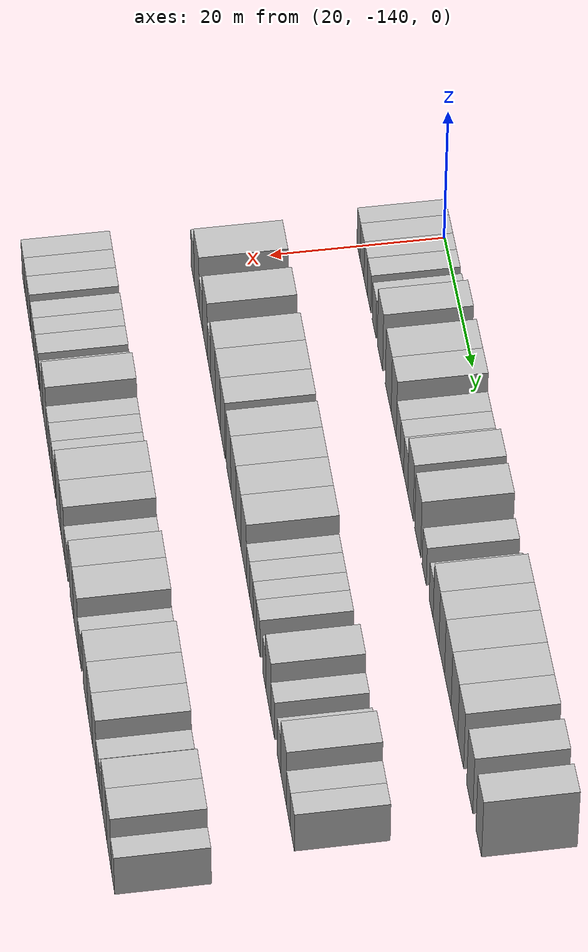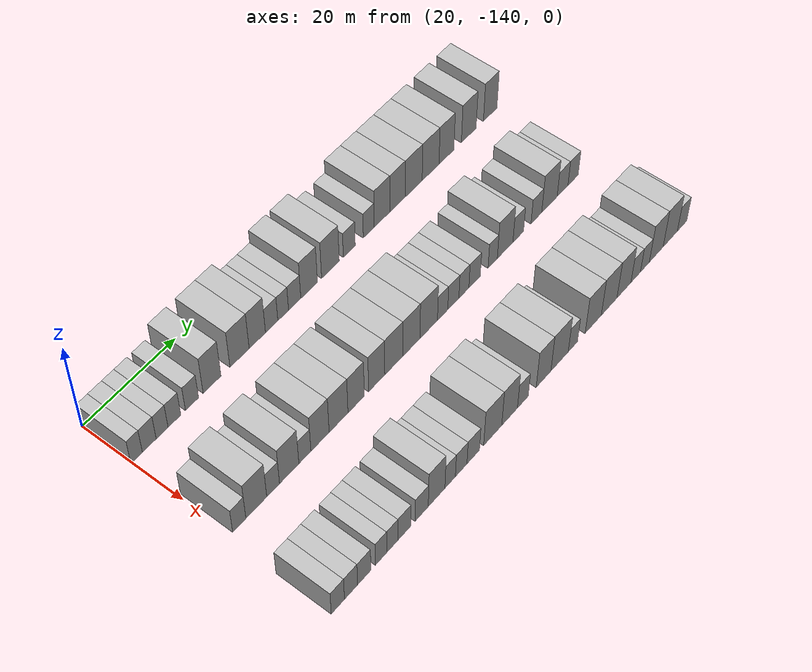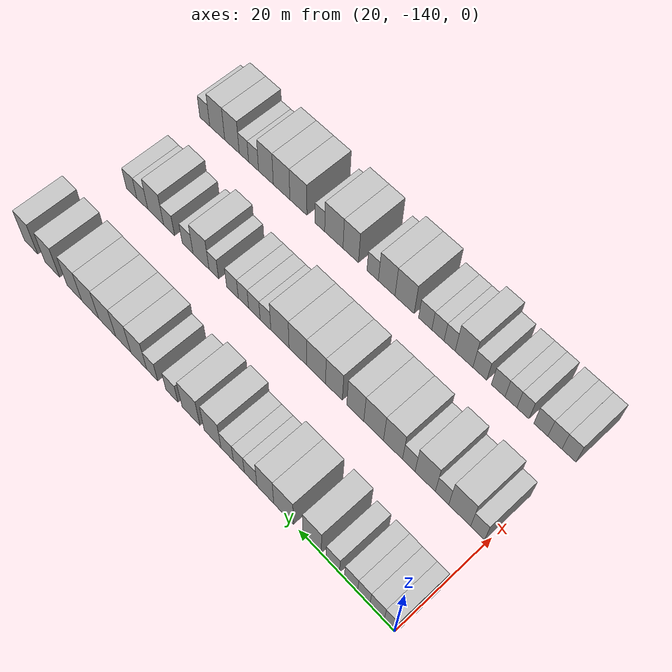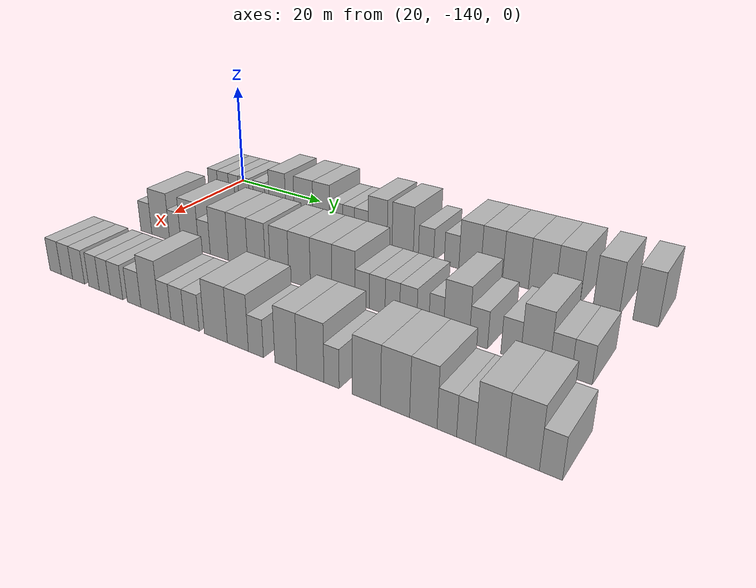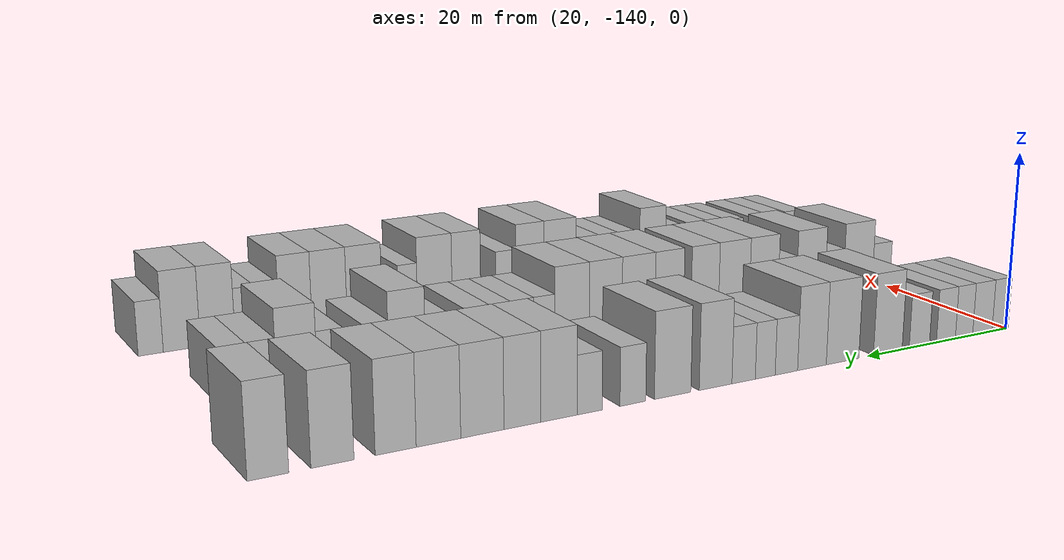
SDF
<sdf version="1.6">
 <world name="default">
  <model name="building_27">
   <static>1</static>
   <pose>25.0000 -139.0678 0 0.000000 0.000000 0.000000</pose>
   <link name="link">
    <pose>0 0 3.00 0 0 0</pose>
    <collision name="collision"><geometry><box><size>10.0000 2.4345 6.0000</size></box></geometry></collision>
    <visual name="visual">
     <cast_shadows>0</cast_shadows>
     <geometry><box><size>10.0000 2.4345 6.0000</size></box></geometry>
     <material>
      <script>
       <uri>model://HANNAS_wall/materials/scripts</uri>
       <uri>model://HANNAS_wall/materials/textures</uri>
       <name>vrc/HANNAS_wall</name>
      </script>
     </material>
    </visual>
   </link>
  </model>
  <model name="building_28">
   <static>1</static>
   <pose>25.0000 -136.3945 0 0.000000 0.000000 0.000000</pose>
   <link name="link">
    <pose>0 0 3.00 0 0 0</pose>
    <collision name="collision"><geometry><box><size>10.0000 2.9121 6.0000</size></box></geometry></collision>
    <visual name="visual">
     <cast_shadows>0</cast_shadows>
     <geometry><box><size>10.0000 2.9121 6.0000</size></box></geometry>
     <material>
      <script>
       <uri>model://HANNAS_wall/materials/scripts</uri>
       <uri>model://HANNAS_wall/materials/textures</uri>
       <name>vrc/HANNAS_wall</name>
      </script>
     </material>
    </visual>
   </link>
  </model>
  <model name="building_29">
   <static>1</static>
   <pose>25.0000 -133.6613 0 0.000000 0.000000 0.000000</pose>
   <link name="link">
    <pose>0 0 3.00 0 0 0</pose>
    <collision name="collision"><geometry><box><size>10.0000 2.5542 6.0000</size></box></geometry></collision>
    <visual name="visual">
     <cast_shadows>0</cast_shadows>
     <geometry><box><size>10.0000 2.5542 6.0000</size></box></geometry>
     <material>
      <script>
       <uri>model://HANNAS_wall/materials/scripts</uri>
       <uri>model://HANNAS_wall/materials/textures</uri>
       <name>vrc/HANNAS_wall</name>
      </script>
     </material>
    </visual>
   </link>
  </model>
  <model name="building_30">
   <static>1</static>
   <pose>25.0000 -131.0074 0 0.000000 0.000000 0.000000</pose>
   <link name="link">
    <pose>0 0 3.00 0 0 0</pose>
    <collision name="collision"><geometry><box><size>10.0000 2.7537 6.0000</size></box></geometry></collision>
    <visual name="visual">
     <cast_shadows>0</cast_shadows>
     <geometry><box><size>10.0000 2.7537 6.0000</size></box></geometry>
     <material>
      <script>
       <uri>model://HANNAS_wall/materials/scripts</uri>
       <uri>model://HANNAS_wall/materials/textures</uri>
       <name>vrc/HANNAS_wall</name>
      </script>
     </material>
    </visual>
   </link>
  </model>
  <model name="building_31">
   <static>1</static>
   <pose>25.0000 -127.1895 0 0.000000 0.000000 0.000000</pose>
   <link name="link">
    <pose>0 0 3.00 0 0 0</pose>
    <collision name="collision"><geometry><box><size>10.0000 2.8820 6.0000</size></box></geometry></collision>
    <visual name="visual">
     <cast_shadows>0</cast_shadows>
     <geometry><box><size>10.0000 2.8820 6.0000</size></box></geometry>
     <material>
      <script>
       <uri>model://HANNAS_wall/materials/scripts</uri>
       <uri>model://HANNAS_wall/materials/textures</uri>
       <name>vrc/HANNAS_wall</name>
      </script>
     </material>
    </visual>
   </link>
  </model>
  <model name="building_32">
   <static>1</static>
   <pose>25.0000 -122.7616 0 0.000000 0.000000 0.000000</pose>
   <link name="link">
    <pose>0 0 4.50 0 0 0</pose>
    <collision name="collision"><geometry><box><size>10.0000 3.9737 9.0000</size></box></geometry></collision>
    <visual name="visual">
     <cast_shadows>0</cast_shadows>
     <geometry><box><size>10.0000 3.9737 9.0000</size></box></geometry>
     <material>
      <script>
       <uri>model://HANNAS_wall/materials/scripts</uri>
       <uri>model://HANNAS_wall/materials/textures</uri>
       <name>vrc/HANNAS_wall</name>
      </script>
     </material>
    </visual>
   </link>
  </model>
  <model name="building_33">
   <static>1</static>
   <pose>25.0000 -116.5971 0 0.000000 0.000000 0.000000</pose>
   <link name="link">
    <pose>0 0 4.50 0 0 0</pose>
    <collision name="collision"><geometry><box><size>10.0000 4.3553 9.0000</size></box></geometry></collision>
    <visual name="visual">
     <cast_shadows>0</cast_shadows>
     <geometry><box><size>10.0000 4.3553 9.0000</size></box></geometry>
     <material>
      <script>
       <uri>model://HANNAS_wall/materials/scripts</uri>
       <uri>model://HANNAS_wall/materials/textures</uri>
       <name>vrc/HANNAS_wall</name>
      </script>
     </material>
    </visual>
   </link>
  </model>
  <model name="building_34">
   <static>1</static>
   <pose>25.0000 -112.5437 0 0.000000 0.000000 0.000000</pose>
   <link name="link">
    <pose>0 0 4.50 0 0 0</pose>
    <collision name="collision"><geometry><box><size>10.0000 3.7516 9.0000</size></box></geometry></collision>
    <visual name="visual">
     <cast_shadows>0</cast_shadows>
     <geometry><box><size>10.0000 3.7516 9.0000</size></box></geometry>
     <material>
      <script>
       <uri>model://HANNAS_wall/materials/scripts</uri>
       <uri>model://HANNAS_wall/materials/textures</uri>
       <name>vrc/HANNAS_wall</name>
      </script>
     </material>
    </visual>
   </link>
  </model>
  <model name="building_35">
   <static>1</static>
   <pose>25.0000 -109.2309 0 0.000000 0.000000 0.000000</pose>
   <link name="link">
    <pose>0 0 3.00 0 0 0</pose>
    <collision name="collision"><geometry><box><size>10.0000 2.8741 6.0000</size></box></geometry></collision>
    <visual name="visual">
     <cast_shadows>0</cast_shadows>
     <geometry><box><size>10.0000 2.8741 6.0000</size></box></geometry>
     <material>
      <script>
       <uri>model://HANNAS_wall/materials/scripts</uri>
       <uri>model://HANNAS_wall/materials/textures</uri>
       <name>vrc/HANNAS_wall</name>
      </script>
     </material>
    </visual>
   </link>
  </model>
  <model name="building_36">
   <static>1</static>
   <pose>25.0000 -106.5407 0 0.000000 0.000000 0.000000</pose>
   <link name="link">
    <pose>0 0 3.00 0 0 0</pose>
    <collision name="collision"><geometry><box><size>10.0000 2.5064 6.0000</size></box></geometry></collision>
    <visual name="visual">
     <cast_shadows>0</cast_shadows>
     <geometry><box><size>10.0000 2.5064 6.0000</size></box></geometry>
     <material>
      <script>
       <uri>model://HANNAS_wall/materials/scripts</uri>
       <uri>model://HANNAS_wall/materials/textures</uri>
       <name>vrc/HANNAS_wall</name>
      </script>
     </material>
    </visual>
   </link>
  </model>
  <model name="building_37">
   <static>1</static>
   <pose>25.0000 -103.8382 0 0.000000 0.000000 0.000000</pose>
   <link name="link">
    <pose>0 0 3.00 0 0 0</pose>
    <collision name="collision"><geometry><box><size>10.0000 2.8986 6.0000</size></box></geometry></collision>
    <visual name="visual">
     <cast_shadows>0</cast_shadows>
     <geometry><box><size>10.0000 2.8986 6.0000</size></box></geometry>
     <material>
      <script>
       <uri>model://HANNAS_wall/materials/scripts</uri>
       <uri>model://HANNAS_wall/materials/textures</uri>
       <name>vrc/HANNAS_wall</name>
      </script>
     </material>
    </visual>
   </link>
  </model>
  <model name="building_38">
   <static>1</static>
   <pose>25.0000 -100.4034 0 0.000000 0.000000 0.000000</pose>
   <link name="link">
    <pose>0 0 4.50 0 0 0</pose>
    <collision name="collision"><geometry><box><size>10.0000 3.9711 9.0000</size></box></geometry></collision>
    <visual name="visual">
     <cast_shadows>0</cast_shadows>
     <geometry><box><size>10.0000 3.9711 9.0000</size></box></geometry>
     <material>
      <script>
       <uri>model://HANNAS_wall/materials/scripts</uri>
       <uri>model://HANNAS_wall/materials/textures</uri>
       <name>vrc/HANNAS_wall</name>
      </script>
     </material>
    </visual>
   </link>
  </model>
  <model name="building_39">
   <static>1</static>
   <pose>25.0000 -95.2755 0 0.000000 0.000000 0.000000</pose>
   <link name="link">
    <pose>0 0 4.50 0 0 0</pose>
    <collision name="collision"><geometry><box><size>10.0000 4.2846 9.0000</size></box></geometry></collision>
    <visual name="visual">
     <cast_shadows>0</cast_shadows>
     <geometry><box><size>10.0000 4.2846 9.0000</size></box></geometry>
     <material>
      <script>
       <uri>model://HANNAS_wall/materials/scripts</uri>
       <uri>model://HANNAS_wall/materials/textures</uri>
       <name>vrc/HANNAS_wall</name>
      </script>
     </material>
    </visual>
   </link>
  </model>
  <model name="building_40">
   <static>1</static>
   <pose>25.0000 -90.6604 0 0.000000 0.000000 0.000000</pose>
   <link name="link">
    <pose>0 0 3.00 0 0 0</pose>
    <collision name="collision"><geometry><box><size>10.0000 2.9457 6.0000</size></box></geometry></collision>
    <visual name="visual">
     <cast_shadows>0</cast_shadows>
     <geometry><box><size>10.0000 2.9457 6.0000</size></box></geometry>
     <material>
      <script>
       <uri>model://HANNAS_wall/materials/scripts</uri>
       <uri>model://HANNAS_wall/materials/textures</uri>
       <name>vrc/HANNAS_wall</name>
      </script>
     </material>
    </visual>
   </link>
  </model>
  <model name="building_41">
   <static>1</static>
   <pose>25.0000 -85.8141 0 0.000000 0.000000 0.000000</pose>
   <link name="link">
    <pose>0 0 3.00 0 0 0</pose>
    <collision name="collision"><geometry><box><size>10.0000 2.7468 6.0000</size></box></geometry></collision>
    <visual name="visual">
     <cast_shadows>0</cast_shadows>
     <geometry><box><size>10.0000 2.7468 6.0000</size></box></geometry>
     <material>
      <script>
       <uri>model://HANNAS_wall/materials/scripts</uri>
       <uri>model://HANNAS_wall/materials/textures</uri>
       <name>vrc/HANNAS_wall</name>
      </script>
     </material>
    </visual>
   </link>
  </model>
  <model name="building_42">
   <static>1</static>
   <pose>25.0000 -82.4574 0 0.000000 0.000000 0.000000</pose>
   <link name="link">
    <pose>0 0 4.50 0 0 0</pose>
    <collision name="collision"><geometry><box><size>10.0000 3.9666 9.0000</size></box></geometry></collision>
    <visual name="visual">
     <cast_shadows>0</cast_shadows>
     <geometry><box><size>10.0000 3.9666 9.0000</size></box></geometry>
     <material>
      <script>
       <uri>model://HANNAS_wall/materials/scripts</uri>
       <uri>model://HANNAS_wall/materials/textures</uri>
       <name>vrc/HANNAS_wall</name>
      </script>
     </material>
    </visual>
   </link>
  </model>
  <model name="building_43">
   <static>1</static>
   <pose>25.0000 -78.5369 0 0.000000 0.000000 0.000000</pose>
   <link name="link">
    <pose>0 0 4.50 0 0 0</pose>
    <collision name="collision"><geometry><box><size>10.0000 3.8744 9.0000</size></box></geometry></collision>
    <visual name="visual">
     <cast_shadows>0</cast_shadows>
     <geometry><box><size>10.0000 3.8744 9.0000</size></box></geometry>
     <material>
      <script>
       <uri>model://HANNAS_wall/materials/scripts</uri>
       <uri>model://HANNAS_wall/materials/textures</uri>
       <name>vrc/HANNAS_wall</name>
      </script>
     </material>
    </visual>
   </link>
  </model>
  <model name="building_44">
   <static>1</static>
   <pose>25.0000 -74.3791 0 0.000000 0.000000 0.000000</pose>
   <link name="link">
    <pose>0 0 4.50 0 0 0</pose>
    <collision name="collision"><geometry><box><size>10.0000 4.4412 9.0000</size></box></geometry></collision>
    <visual name="visual">
     <cast_shadows>0</cast_shadows>
     <geometry><box><size>10.0000 4.4412 9.0000</size></box></geometry>
     <material>
      <script>
       <uri>model://HANNAS_wall/materials/scripts</uri>
       <uri>model://HANNAS_wall/materials/textures</uri>
       <name>vrc/HANNAS_wall</name>
      </script>
     </material>
    </visual>
   </link>
  </model>
  <model name="building_45">
   <static>1</static>
   <pose>25.0000 -69.9395 0 0.000000 0.000000 0.000000</pose>
   <link name="link">
    <pose>0 0 4.50 0 0 0</pose>
    <collision name="collision"><geometry><box><size>10.0000 4.4379 9.0000</size></box></geometry></collision>
    <visual name="visual">
     <cast_shadows>0</cast_shadows>
     <geometry><box><size>10.0000 4.4379 9.0000</size></box></geometry>
     <material>
      <script>
       <uri>model://HANNAS_wall/materials/scripts</uri>
       <uri>model://HANNAS_wall/materials/textures</uri>
       <name>vrc/HANNAS_wall</name>
      </script>
     </material>
    </visual>
   </link>
  </model>
  <model name="building_46">
   <static>1</static>
   <pose>25.0000 -65.7324 0 0.000000 0.000000 0.000000</pose>
   <link name="link">
    <pose>0 0 4.50 0 0 0</pose>
    <collision name="collision"><geometry><box><size>10.0000 3.9764 9.0000</size></box></geometry></collision>
    <visual name="visual">
     <cast_shadows>0</cast_shadows>
     <geometry><box><size>10.0000 3.9764 9.0000</size></box></geometry>
     <material>
      <script>
       <uri>model://HANNAS_wall/materials/scripts</uri>
       <uri>model://HANNAS_wall/materials/textures</uri>
       <name>vrc/HANNAS_wall</name>
      </script>
     </material>
    </visual>
   </link>
  </model>
  <model name="building_47">
   <static>1</static>
   <pose>25.0000 -59.7386 0 0.000000 0.000000 0.000000</pose>
   <link name="link">
    <pose>0 0 4.50 0 0 0</pose>
    <collision name="collision"><geometry><box><size>10.0000 4.0110 9.0000</size></box></geometry></collision>
    <visual name="visual">
     <cast_shadows>0</cast_shadows>
     <geometry><box><size>10.0000 4.0110 9.0000</size></box></geometry>
     <material>
      <script>
       <uri>model://HANNAS_wall/materials/scripts</uri>
       <uri>model://HANNAS_wall/materials/textures</uri>
       <name>vrc/HANNAS_wall</name>
      </script>
     </material>
    </visual>
   </link>
  </model>
  <model name="building_48">
   <static>1</static>
   <pose>25.0000 -53.8693 0 0.000000 0.000000 0.000000</pose>
   <link name="link">
    <pose>0 0 4.50 0 0 0</pose>
    <collision name="collision"><geometry><box><size>10.0000 3.7276 9.0000</size></box></geometry></collision>
    <visual name="visual">
     <cast_shadows>0</cast_shadows>
     <geometry><box><size>10.0000 3.7276 9.0000</size></box></geometry>
     <material>
      <script>
       <uri>model://HANNAS_wall/materials/scripts</uri>
       <uri>model://HANNAS_wall/materials/textures</uri>
       <name>vrc/HANNAS_wall</name>
      </script>
     </material>
    </visual>
   </link>
  </model>
  <model name="building_150">
   <static>1</static>
   <pose>44.0000 -138.0791 0 0.000000 0.000000 0.000000</pose>
   <link name="link">
    <pose>0 0 3.00 0 0 0</pose>
    <collision name="collision"><geometry><box><size>10.0000 2.8252 6.0000</size></box></geometry></collision>
    <visual name="visual">
     <cast_shadows>0</cast_shadows>
     <geometry><box><size>10.0000 2.8252 6.0000</size></box></geometry>
     <material>
      <script>
       <uri>model://HANNAS_wall/materials/scripts</uri>
       <uri>model://HANNAS_wall/materials/textures</uri>
       <name>vrc/HANNAS_wall</name>
      </script>
     </material>
    </visual>
   </link>
  </model>
  <model name="building_151">
   <static>1</static>
   <pose>44.0000 -134.4181 0 0.000000 0.000000 0.000000</pose>
   <link name="link">
    <pose>0 0 4.50 0 0 0</pose>
    <collision name="collision"><geometry><box><size>10.0000 4.4967 9.0000</size></box></geometry></collision>
    <visual name="visual">
     <cast_shadows>0</cast_shadows>
     <geometry><box><size>10.0000 4.4967 9.0000</size></box></geometry>
     <material>
      <script>
       <uri>model://HANNAS_wall/materials/scripts</uri>
       <uri>model://HANNAS_wall/materials/textures</uri>
       <name>vrc/HANNAS_wall</name>
      </script>
     </material>
    </visual>
   </link>
  </model>
  <model name="building_152">
   <static>1</static>
   <pose>44.0000 -130.7746 0 0.000000 0.000000 0.000000</pose>
   <link name="link">
    <pose>0 0 3.00 0 0 0</pose>
    <collision name="collision"><geometry><box><size>10.0000 2.7904 6.0000</size></box></geometry></collision>
    <visual name="visual">
     <cast_shadows>0</cast_shadows>
     <geometry><box><size>10.0000 2.7904 6.0000</size></box></geometry>
     <material>
      <script>
       <uri>model://HANNAS_wall/materials/scripts</uri>
       <uri>model://HANNAS_wall/materials/textures</uri>
       <name>vrc/HANNAS_wall</name>
      </script>
     </material>
    </visual>
   </link>
  </model>
  <model name="building_153">
   <static>1</static>
   <pose>44.0000 -127.2425 0 0.000000 0.000000 0.000000</pose>
   <link name="link">
    <pose>0 0 4.50 0 0 0</pose>
    <collision name="collision"><geometry><box><size>10.0000 4.2736 9.0000</size></box></geometry></collision>
    <visual name="visual">
     <cast_shadows>0</cast_shadows>
     <geometry><box><size>10.0000 4.2736 9.0000</size></box></geometry>
     <material>
      <script>
       <uri>model://HANNAS_wall/materials/scripts</uri>
       <uri>model://HANNAS_wall/materials/textures</uri>
       <name>vrc/HANNAS_wall</name>
      </script>
     </material>
    </visual>
   </link>
  </model>
  <model name="building_154">
   <static>1</static>
   <pose>44.0000 -123.7593 0 0.000000 0.000000 0.000000</pose>
   <link name="link">
    <pose>0 0 3.00 0 0 0</pose>
    <collision name="collision"><geometry><box><size>10.0000 2.6928 6.0000</size></box></geometry></collision>
    <visual name="visual">
     <cast_shadows>0</cast_shadows>
     <geometry><box><size>10.0000 2.6928 6.0000</size></box></geometry>
     <material>
      <script>
       <uri>model://HANNAS_wall/materials/scripts</uri>
       <uri>model://HANNAS_wall/materials/textures</uri>
       <name>vrc/HANNAS_wall</name>
      </script>
     </material>
    </visual>
   </link>
  </model>
  <model name="building_155">
   <static>1</static>
   <pose>44.0000 -120.3516 0 0.000000 0.000000 0.000000</pose>
   <link name="link">
    <pose>0 0 4.50 0 0 0</pose>
    <collision name="collision"><geometry><box><size>10.0000 4.1226 9.0000</size></box></geometry></collision>
    <visual name="visual">
     <cast_shadows>0</cast_shadows>
     <geometry><box><size>10.0000 4.1226 9.0000</size></box></geometry>
     <material>
      <script>
       <uri>model://HANNAS_wall/materials/scripts</uri>
       <uri>model://HANNAS_wall/materials/textures</uri>
       <name>vrc/HANNAS_wall</name>
      </script>
     </material>
    </visual>
   </link>
  </model>
  <model name="building_156">
   <static>1</static>
   <pose>44.0000 -116.1264 0 0.000000 0.000000 0.000000</pose>
   <link name="link">
    <pose>0 0 4.50 0 0 0</pose>
    <collision name="collision"><geometry><box><size>10.0000 4.3278 9.0000</size></box></geometry></collision>
    <visual name="visual">
     <cast_shadows>0</cast_shadows>
     <geometry><box><size>10.0000 4.3278 9.0000</size></box></geometry>
     <material>
      <script>
       <uri>model://HANNAS_wall/materials/scripts</uri>
       <uri>model://HANNAS_wall/materials/textures</uri>
       <name>vrc/HANNAS_wall</name>
      </script>
     </material>
    </visual>
   </link>
  </model>
  <model name="building_157">
   <static>1</static>
   <pose>44.0000 -112.0617 0 0.000000 0.000000 0.000000</pose>
   <link name="link">
    <pose>0 0 4.50 0 0 0</pose>
    <collision name="collision"><geometry><box><size>10.0000 3.8017 9.0000</size></box></geometry></collision>
    <visual name="visual">
     <cast_shadows>0</cast_shadows>
     <geometry><box><size>10.0000 3.8017 9.0000</size></box></geometry>
     <material>
      <script>
       <uri>model://HANNAS_wall/materials/scripts</uri>
       <uri>model://HANNAS_wall/materials/textures</uri>
       <name>vrc/HANNAS_wall</name>
      </script>
     </material>
    </visual>
   </link>
  </model>
  <model name="building_158">
   <static>1</static>
   <pose>44.0000 -107.2463 0 0.000000 0.000000 0.000000</pose>
   <link name="link">
    <pose>0 0 4.50 0 0 0</pose>
    <collision name="collision"><geometry><box><size>10.0000 3.8291 9.0000</size></box></geometry></collision>
    <visual name="visual">
     <cast_shadows>0</cast_shadows>
     <geometry><box><size>10.0000 3.8291 9.0000</size></box></geometry>
     <material>
      <script>
       <uri>model://HANNAS_wall/materials/scripts</uri>
       <uri>model://HANNAS_wall/materials/textures</uri>
       <name>vrc/HANNAS_wall</name>
      </script>
     </material>
    </visual>
   </link>
  </model>
  <model name="building_159">
   <static>1</static>
   <pose>44.0000 -103.1674 0 0.000000 0.000000 0.000000</pose>
   <link name="link">
    <pose>0 0 4.50 0 0 0</pose>
    <collision name="collision"><geometry><box><size>10.0000 4.3288 9.0000</size></box></geometry></collision>
    <visual name="visual">
     <cast_shadows>0</cast_shadows>
     <geometry><box><size>10.0000 4.3288 9.0000</size></box></geometry>
     <material>
      <script>
       <uri>model://HANNAS_wall/materials/scripts</uri>
       <uri>model://HANNAS_wall/materials/textures</uri>
       <name>vrc/HANNAS_wall</name>
      </script>
     </material>
    </visual>
   </link>
  </model>
  <model name="building_160">
   <static>1</static>
   <pose>44.0000 -98.9202 0 0.000000 0.000000 0.000000</pose>
   <link name="link">
    <pose>0 0 4.50 0 0 0</pose>
    <collision name="collision"><geometry><box><size>10.0000 4.1656 9.0000</size></box></geometry></collision>
    <visual name="visual">
     <cast_shadows>0</cast_shadows>
     <geometry><box><size>10.0000 4.1656 9.0000</size></box></geometry>
     <material>
      <script>
       <uri>model://HANNAS_wall/materials/scripts</uri>
       <uri>model://HANNAS_wall/materials/textures</uri>
       <name>vrc/HANNAS_wall</name>
      </script>
     </material>
    </visual>
   </link>
  </model>
  <model name="building_161">
   <static>1</static>
   <pose>44.0000 -94.6711 0 0.000000 0.000000 0.000000</pose>
   <link name="link">
    <pose>0 0 4.50 0 0 0</pose>
    <collision name="collision"><geometry><box><size>10.0000 4.3327 9.0000</size></box></geometry></collision>
    <visual name="visual">
     <cast_shadows>0</cast_shadows>
     <geometry><box><size>10.0000 4.3327 9.0000</size></box></geometry>
     <material>
      <script>
       <uri>model://HANNAS_wall/materials/scripts</uri>
       <uri>model://HANNAS_wall/materials/textures</uri>
       <name>vrc/HANNAS_wall</name>
      </script>
     </material>
    </visual>
   </link>
  </model>
  <model name="building_162">
   <static>1</static>
   <pose>44.0000 -91.2147 0 0.000000 0.000000 0.000000</pose>
   <link name="link">
    <pose>0 0 3.00 0 0 0</pose>
    <collision name="collision"><geometry><box><size>10.0000 2.5800 6.0000</size></box></geometry></collision>
    <visual name="visual">
     <cast_shadows>0</cast_shadows>
     <geometry><box><size>10.0000 2.5800 6.0000</size></box></geometry>
     <material>
      <script>
       <uri>model://HANNAS_wall/materials/scripts</uri>
       <uri>model://HANNAS_wall/materials/textures</uri>
       <name>vrc/HANNAS_wall</name>
      </script>
     </material>
    </visual>
   </link>
  </model>
  <model name="building_163">
   <static>1</static>
   <pose>44.0000 -88.5266 0 0.000000 0.000000 0.000000</pose>
   <link name="link">
    <pose>0 0 3.00 0 0 0</pose>
    <collision name="collision"><geometry><box><size>10.0000 2.7961 6.0000</size></box></geometry></collision>
    <visual name="visual">
     <cast_shadows>0</cast_shadows>
     <geometry><box><size>10.0000 2.7961 6.0000</size></box></geometry>
     <material>
      <script>
       <uri>model://HANNAS_wall/materials/scripts</uri>
       <uri>model://HANNAS_wall/materials/textures</uri>
       <name>vrc/HANNAS_wall</name>
      </script>
     </material>
    </visual>
   </link>
  </model>
  <model name="building_164">
   <static>1</static>
   <pose>44.0000 -85.8614 0 0.000000 0.000000 0.000000</pose>
   <link name="link">
    <pose>0 0 3.00 0 0 0</pose>
    <collision name="collision"><geometry><box><size>10.0000 2.5344 6.0000</size></box></geometry></collision>
    <visual name="visual">
     <cast_shadows>0</cast_shadows>
     <geometry><box><size>10.0000 2.5344 6.0000</size></box></geometry>
     <material>
      <script>
       <uri>model://HANNAS_wall/materials/scripts</uri>
       <uri>model://HANNAS_wall/materials/textures</uri>
       <name>vrc/HANNAS_wall</name>
      </script>
     </material>
    </visual>
   </link>
  </model>
  <model name="building_165">
   <static>1</static>
   <pose>44.0000 -83.1303 0 0.000000 0.000000 0.000000</pose>
   <link name="link">
    <pose>0 0 3.00 0 0 0</pose>
    <collision name="collision"><geometry><box><size>10.0000 2.9280 6.0000</size></box></geometry></collision>
    <visual name="visual">
     <cast_shadows>0</cast_shadows>
     <geometry><box><size>10.0000 2.9280 6.0000</size></box></geometry>
     <material>
      <script>
       <uri>model://HANNAS_wall/materials/scripts</uri>
       <uri>model://HANNAS_wall/materials/textures</uri>
       <name>vrc/HANNAS_wall</name>
      </script>
     </material>
    </visual>
   </link>
  </model>
  <model name="building_166">
   <static>1</static>
   <pose>44.0000 -78.4611 0 0.000000 0.000000 0.000000</pose>
   <link name="link">
    <pose>0 0 3.00 0 0 0</pose>
    <collision name="collision"><geometry><box><size>10.0000 2.4103 6.0000</size></box></geometry></collision>
    <visual name="visual">
     <cast_shadows>0</cast_shadows>
     <geometry><box><size>10.0000 2.4103 6.0000</size></box></geometry>
     <material>
      <script>
       <uri>model://HANNAS_wall/materials/scripts</uri>
       <uri>model://HANNAS_wall/materials/textures</uri>
       <name>vrc/HANNAS_wall</name>
      </script>
     </material>
    </visual>
   </link>
  </model>
  <model name="building_167">
   <static>1</static>
   <pose>44.0000 -75.2057 0 0.000000 0.000000 0.000000</pose>
   <link name="link">
    <pose>0 0 4.50 0 0 0</pose>
    <collision name="collision"><geometry><box><size>10.0000 4.1004 9.0000</size></box></geometry></collision>
    <visual name="visual">
     <cast_shadows>0</cast_shadows>
     <geometry><box><size>10.0000 4.1004 9.0000</size></box></geometry>
     <material>
      <script>
       <uri>model://HANNAS_wall/materials/scripts</uri>
       <uri>model://HANNAS_wall/materials/textures</uri>
       <name>vrc/HANNAS_wall</name>
      </script>
     </material>
    </visual>
   </link>
  </model>
  <model name="building_168">
   <static>1</static>
   <pose>44.0000 -71.7477 0 0.000000 0.000000 0.000000</pose>
   <link name="link">
    <pose>0 0 3.00 0 0 0</pose>
    <collision name="collision"><geometry><box><size>10.0000 2.8157 6.0000</size></box></geometry></collision>
    <visual name="visual">
     <cast_shadows>0</cast_shadows>
     <geometry><box><size>10.0000 2.8157 6.0000</size></box></geometry>
     <material>
      <script>
       <uri>model://HANNAS_wall/materials/scripts</uri>
       <uri>model://HANNAS_wall/materials/textures</uri>
       <name>vrc/HANNAS_wall</name>
      </script>
     </material>
    </visual>
   </link>
  </model>
  <model name="building_169">
   <static>1</static>
   <pose>44.0000 -66.8935 0 0.000000 0.000000 0.000000</pose>
   <link name="link">
    <pose>0 0 3.00 0 0 0</pose>
    <collision name="collision"><geometry><box><size>10.0000 2.8925 6.0000</size></box></geometry></collision>
    <visual name="visual">
     <cast_shadows>0</cast_shadows>
     <geometry><box><size>10.0000 2.8925 6.0000</size></box></geometry>
     <material>
      <script>
       <uri>model://HANNAS_wall/materials/scripts</uri>
       <uri>model://HANNAS_wall/materials/textures</uri>
       <name>vrc/HANNAS_wall</name>
      </script>
     </material>
    </visual>
   </link>
  </model>
  <model name="building_170">
   <static>1</static>
   <pose>44.0000 -63.3457 0 0.000000 0.000000 0.000000</pose>
   <link name="link">
    <pose>0 0 4.50 0 0 0</pose>
    <collision name="collision"><geometry><box><size>10.0000 4.2031 9.0000</size></box></geometry></collision>
    <visual name="visual">
     <cast_shadows>0</cast_shadows>
     <geometry><box><size>10.0000 4.2031 9.0000</size></box></geometry>
     <material>
      <script>
       <uri>model://HANNAS_wall/materials/scripts</uri>
       <uri>model://HANNAS_wall/materials/textures</uri>
       <name>vrc/HANNAS_wall</name>
      </script>
     </material>
    </visual>
   </link>
  </model>
  <model name="building_171">
   <static>1</static>
   <pose>44.0000 -59.7529 0 0.000000 0.000000 0.000000</pose>
   <link name="link">
    <pose>0 0 3.00 0 0 0</pose>
    <collision name="collision"><geometry><box><size>10.0000 2.9825 6.0000</size></box></geometry></collision>
    <visual name="visual">
     <cast_shadows>0</cast_shadows>
     <geometry><box><size>10.0000 2.9825 6.0000</size></box></geometry>
     <material>
      <script>
       <uri>model://HANNAS_wall/materials/scripts</uri>
       <uri>model://HANNAS_wall/materials/textures</uri>
       <name>vrc/HANNAS_wall</name>
      </script>
     </material>
    </visual>
   </link>
  </model>
  <model name="building_172">
   <static>1</static>
   <pose>44.0000 -56.8411 0 0.000000 0.000000 0.000000</pose>
   <link name="link">
    <pose>0 0 3.00 0 0 0</pose>
    <collision name="collision"><geometry><box><size>10.0000 2.8412 6.0000</size></box></geometry></collision>
    <visual name="visual">
     <cast_shadows>0</cast_shadows>
     <geometry><box><size>10.0000 2.8412 6.0000</size></box></geometry>
     <material>
      <script>
       <uri>model://HANNAS_wall/materials/scripts</uri>
       <uri>model://HANNAS_wall/materials/textures</uri>
       <name>vrc/HANNAS_wall</name>
      </script>
     </material>
    </visual>
   </link>
  </model>
  <model name="building_263">
   <static>1</static>
   <pose>63.0000 -139.1213 0 0.000000 0.000000 0.000000</pose>
   <link name="link">
    <pose>0 0 3.00 0 0 0</pose>
    <collision name="collision"><geometry><box><size>10.0000 2.8452 6.0000</size></box></geometry></collision>
    <visual name="visual">
     <cast_shadows>0</cast_shadows>
     <geometry><box><size>10.0000 2.8452 6.0000</size></box></geometry>
     <material>
      <script>
       <uri>model://HANNAS_wall/materials/scripts</uri>
       <uri>model://HANNAS_wall/materials/textures</uri>
       <name>vrc/HANNAS_wall</name>
      </script>
     </material>
    </visual>
   </link>
  </model>
  <model name="building_264">
   <static>1</static>
   <pose>63.0000 -136.2713 0 0.000000 0.000000 0.000000</pose>
   <link name="link">
    <pose>0 0 3.00 0 0 0</pose>
    <collision name="collision"><geometry><box><size>10.0000 2.8547 6.0000</size></box></geometry></collision>
    <visual name="visual">
     <cast_shadows>0</cast_shadows>
     <geometry><box><size>10.0000 2.8547 6.0000</size></box></geometry>
     <material>
      <script>
       <uri>model://HANNAS_wall/materials/scripts</uri>
       <uri>model://HANNAS_wall/materials/textures</uri>
       <name>vrc/HANNAS_wall</name>
      </script>
     </material>
    </visual>
   </link>
  </model>
  <model name="building_265">
   <static>1</static>
   <pose>63.0000 -133.3930 0 0.000000 0.000000 0.000000</pose>
   <link name="link">
    <pose>0 0 3.00 0 0 0</pose>
    <collision name="collision"><geometry><box><size>10.0000 2.9019 6.0000</size></box></geometry></collision>
    <visual name="visual">
     <cast_shadows>0</cast_shadows>
     <geometry><box><size>10.0000 2.9019 6.0000</size></box></geometry>
     <material>
      <script>
       <uri>model://HANNAS_wall/materials/scripts</uri>
       <uri>model://HANNAS_wall/materials/textures</uri>
       <name>vrc/HANNAS_wall</name>
      </script>
     </material>
    </visual>
   </link>
  </model>
  <model name="building_266">
   <static>1</static>
   <pose>63.0000 -129.6825 0 0.000000 0.000000 0.000000</pose>
   <link name="link">
    <pose>0 0 3.00 0 0 0</pose>
    <collision name="collision"><geometry><box><size>10.0000 2.5192 6.0000</size></box></geometry></collision>
    <visual name="visual">
     <cast_shadows>0</cast_shadows>
     <geometry><box><size>10.0000 2.5192 6.0000</size></box></geometry>
     <material>
      <script>
       <uri>model://HANNAS_wall/materials/scripts</uri>
       <uri>model://HANNAS_wall/materials/textures</uri>
       <name>vrc/HANNAS_wall</name>
      </script>
     </material>
    </visual>
   </link>
  </model>
  <model name="building_267">
   <static>1</static>
   <pose>63.0000 -127.1682 0 0.000000 0.000000 0.000000</pose>
   <link name="link">
    <pose>0 0 3.00 0 0 0</pose>
    <collision name="collision"><geometry><box><size>10.0000 2.5094 6.0000</size></box></geometry></collision>
    <visual name="visual">
     <cast_shadows>0</cast_shadows>
     <geometry><box><size>10.0000 2.5094 6.0000</size></box></geometry>
     <material>
      <script>
       <uri>model://HANNAS_wall/materials/scripts</uri>
       <uri>model://HANNAS_wall/materials/textures</uri>
       <name>vrc/HANNAS_wall</name>
      </script>
     </material>
    </visual>
   </link>
  </model>
  <model name="building_268">
   <static>1</static>
   <pose>63.0000 -124.4638 0 0.000000 0.000000 0.000000</pose>
   <link name="link">
    <pose>0 0 3.00 0 0 0</pose>
    <collision name="collision"><geometry><box><size>10.0000 2.8994 6.0000</size></box></geometry></collision>
    <visual name="visual">
     <cast_shadows>0</cast_shadows>
     <geometry><box><size>10.0000 2.8994 6.0000</size></box></geometry>
     <material>
      <script>
       <uri>model://HANNAS_wall/materials/scripts</uri>
       <uri>model://HANNAS_wall/materials/textures</uri>
       <name>vrc/HANNAS_wall</name>
      </script>
     </material>
    </visual>
   </link>
  </model>
  <model name="building_269">
   <static>1</static>
   <pose>63.0000 -120.5149 0 0.000000 0.000000 0.000000</pose>
   <link name="link">
    <pose>0 0 3.00 0 0 0</pose>
    <collision name="collision"><geometry><box><size>10.0000 2.9983 6.0000</size></box></geometry></collision>
    <visual name="visual">
     <cast_shadows>0</cast_shadows>
     <geometry><box><size>10.0000 2.9983 6.0000</size></box></geometry>
     <material>
      <script>
       <uri>model://HANNAS_wall/materials/scripts</uri>
       <uri>model://HANNAS_wall/materials/textures</uri>
       <name>vrc/HANNAS_wall</name>
      </script>
     </material>
    </visual>
   </link>
  </model>
  <model name="building_270">
   <static>1</static>
   <pose>63.0000 -117.0803 0 0.000000 0.000000 0.000000</pose>
   <link name="link">
    <pose>0 0 4.50 0 0 0</pose>
    <collision name="collision"><geometry><box><size>10.0000 3.8708 9.0000</size></box></geometry></collision>
    <visual name="visual">
     <cast_shadows>0</cast_shadows>
     <geometry><box><size>10.0000 3.8708 9.0000</size></box></geometry>
     <material>
      <script>
       <uri>model://HANNAS_wall/materials/scripts</uri>
       <uri>model://HANNAS_wall/materials/textures</uri>
       <name>vrc/HANNAS_wall</name>
      </script>
     </material>
    </visual>
   </link>
  </model>
  <model name="building_271">
   <static>1</static>
   <pose>63.0000 -113.9139 0 0.000000 0.000000 0.000000</pose>
   <link name="link">
    <pose>0 0 3.00 0 0 0</pose>
    <collision name="collision"><geometry><box><size>10.0000 2.4621 6.0000</size></box></geometry></collision>
    <visual name="visual">
     <cast_shadows>0</cast_shadows>
     <geometry><box><size>10.0000 2.4621 6.0000</size></box></geometry>
     <material>
      <script>
       <uri>model://HANNAS_wall/materials/scripts</uri>
       <uri>model://HANNAS_wall/materials/textures</uri>
       <name>vrc/HANNAS_wall</name>
      </script>
     </material>
    </visual>
   </link>
  </model>
  <model name="building_272">
   <static>1</static>
   <pose>63.0000 -111.3132 0 0.000000 0.000000 0.000000</pose>
   <link name="link">
    <pose>0 0 3.00 0 0 0</pose>
    <collision name="collision"><geometry><box><size>10.0000 2.7393 6.0000</size></box></geometry></collision>
    <visual name="visual">
     <cast_shadows>0</cast_shadows>
     <geometry><box><size>10.0000 2.7393 6.0000</size></box></geometry>
     <material>
      <script>
       <uri>model://HANNAS_wall/materials/scripts</uri>
       <uri>model://HANNAS_wall/materials/textures</uri>
       <name>vrc/HANNAS_wall</name>
      </script>
     </material>
    </visual>
   </link>
  </model>
  <model name="building_273">
   <static>1</static>
   <pose>63.0000 -108.4461 0 0.000000 0.000000 0.000000</pose>
   <link name="link">
    <pose>0 0 3.00 0 0 0</pose>
    <collision name="collision"><geometry><box><size>10.0000 2.9948 6.0000</size></box></geometry></collision>
    <visual name="visual">
     <cast_shadows>0</cast_shadows>
     <geometry><box><size>10.0000 2.9948 6.0000</size></box></geometry>
     <material>
      <script>
       <uri>model://HANNAS_wall/materials/scripts</uri>
       <uri>model://HANNAS_wall/materials/textures</uri>
       <name>vrc/HANNAS_wall</name>
      </script>
     </material>
    </visual>
   </link>
  </model>
  <model name="building_274">
   <static>1</static>
   <pose>63.0000 -103.7439 0 0.000000 0.000000 0.000000</pose>
   <link name="link">
    <pose>0 0 4.50 0 0 0</pose>
    <collision name="collision"><geometry><box><size>10.0000 4.4096 9.0000</size></box></geometry></collision>
    <visual name="visual">
     <cast_shadows>0</cast_shadows>
     <geometry><box><size>10.0000 4.4096 9.0000</size></box></geometry>
     <material>
      <script>
       <uri>model://HANNAS_wall/materials/scripts</uri>
       <uri>model://HANNAS_wall/materials/textures</uri>
       <name>vrc/HANNAS_wall</name>
      </script>
     </material>
    </visual>
   </link>
  </model>
  <model name="building_275">
   <static>1</static>
   <pose>63.0000 -99.6037 0 0.000000 0.000000 0.000000</pose>
   <link name="link">
    <pose>0 0 4.50 0 0 0</pose>
    <collision name="collision"><geometry><box><size>10.0000 3.8708 9.0000</size></box></geometry></collision>
    <visual name="visual">
     <cast_shadows>0</cast_shadows>
     <geometry><box><size>10.0000 3.8708 9.0000</size></box></geometry>
     <material>
      <script>
       <uri>model://HANNAS_wall/materials/scripts</uri>
       <uri>model://HANNAS_wall/materials/textures</uri>
       <name>vrc/HANNAS_wall</name>
      </script>
     </material>
    </visual>
   </link>
  </model>
  <model name="building_276">
   <static>1</static>
   <pose>63.0000 -96.3226 0 0.000000 0.000000 0.000000</pose>
   <link name="link">
    <pose>0 0 3.00 0 0 0</pose>
    <collision name="collision"><geometry><box><size>10.0000 2.6915 6.0000</size></box></geometry></collision>
    <visual name="visual">
     <cast_shadows>0</cast_shadows>
     <geometry><box><size>10.0000 2.6915 6.0000</size></box></geometry>
     <material>
      <script>
       <uri>model://HANNAS_wall/materials/scripts</uri>
       <uri>model://HANNAS_wall/materials/textures</uri>
       <name>vrc/HANNAS_wall</name>
      </script>
     </material>
    </visual>
   </link>
  </model>
  <model name="building_277">
   <static>1</static>
   <pose>63.0000 -91.1062 0 0.000000 0.000000 0.000000</pose>
   <link name="link">
    <pose>0 0 4.50 0 0 0</pose>
    <collision name="collision"><geometry><box><size>10.0000 3.7413 9.0000</size></box></geometry></collision>
    <visual name="visual">
     <cast_shadows>0</cast_shadows>
     <geometry><box><size>10.0000 3.7413 9.0000</size></box></geometry>
     <material>
      <script>
       <uri>model://HANNAS_wall/materials/scripts</uri>
       <uri>model://HANNAS_wall/materials/textures</uri>
       <name>vrc/HANNAS_wall</name>
      </script>
     </material>
    </visual>
   </link>
  </model>
  <model name="building_278">
   <static>1</static>
   <pose>63.0000 -87.0079 0 0.000000 0.000000 0.000000</pose>
   <link name="link">
    <pose>0 0 4.50 0 0 0</pose>
    <collision name="collision"><geometry><box><size>10.0000 4.4554 9.0000</size></box></geometry></collision>
    <visual name="visual">
     <cast_shadows>0</cast_shadows>
     <geometry><box><size>10.0000 4.4554 9.0000</size></box></geometry>
     <material>
      <script>
       <uri>model://HANNAS_wall/materials/scripts</uri>
       <uri>model://HANNAS_wall/materials/textures</uri>
       <name>vrc/HANNAS_wall</name>
      </script>
     </material>
    </visual>
   </link>
  </model>
  <model name="building_279">
   <static>1</static>
   <pose>63.0000 -83.5750 0 0.000000 0.000000 0.000000</pose>
   <link name="link">
    <pose>0 0 3.00 0 0 0</pose>
    <collision name="collision"><geometry><box><size>10.0000 2.4104 6.0000</size></box></geometry></collision>
    <visual name="visual">
     <cast_shadows>0</cast_shadows>
     <geometry><box><size>10.0000 2.4104 6.0000</size></box></geometry>
     <material>
      <script>
       <uri>model://HANNAS_wall/materials/scripts</uri>
       <uri>model://HANNAS_wall/materials/textures</uri>
       <name>vrc/HANNAS_wall</name>
      </script>
     </material>
    </visual>
   </link>
  </model>
  <model name="building_280">
   <static>1</static>
   <pose>63.0000 -78.2265 0 0.000000 0.000000 0.000000</pose>
   <link name="link">
    <pose>0 0 4.50 0 0 0</pose>
    <collision name="collision"><geometry><box><size>10.0000 4.2866 9.0000</size></box></geometry></collision>
    <visual name="visual">
     <cast_shadows>0</cast_shadows>
     <geometry><box><size>10.0000 4.2866 9.0000</size></box></geometry>
     <material>
      <script>
       <uri>model://HANNAS_wall/materials/scripts</uri>
       <uri>model://HANNAS_wall/materials/textures</uri>
       <name>vrc/HANNAS_wall</name>
      </script>
     </material>
    </visual>
   </link>
  </model>
  <model name="building_281">
   <static>1</static>
   <pose>63.0000 -73.9793 0 0.000000 0.000000 0.000000</pose>
   <link name="link">
    <pose>0 0 4.50 0 0 0</pose>
    <collision name="collision"><geometry><box><size>10.0000 4.2078 9.0000</size></box></geometry></collision>
    <visual name="visual">
     <cast_shadows>0</cast_shadows>
     <geometry><box><size>10.0000 4.2078 9.0000</size></box></geometry>
     <material>
      <script>
       <uri>model://HANNAS_wall/materials/scripts</uri>
       <uri>model://HANNAS_wall/materials/textures</uri>
       <name>vrc/HANNAS_wall</name>
      </script>
     </material>
    </visual>
   </link>
  </model>
  <model name="building_282">
   <static>1</static>
   <pose>63.0000 -69.9729 0 0.000000 0.000000 0.000000</pose>
   <link name="link">
    <pose>0 0 4.50 0 0 0</pose>
    <collision name="collision"><geometry><box><size>10.0000 3.8050 9.0000</size></box></geometry></collision>
    <visual name="visual">
     <cast_shadows>0</cast_shadows>
     <geometry><box><size>10.0000 3.8050 9.0000</size></box></geometry>
     <material>
      <script>
       <uri>model://HANNAS_wall/materials/scripts</uri>
       <uri>model://HANNAS_wall/materials/textures</uri>
       <name>vrc/HANNAS_wall</name>
      </script>
     </material>
    </visual>
   </link>
  </model>
  <model name="building_283">
   <static>1</static>
   <pose>63.0000 -66.7602 0 0.000000 0.000000 0.000000</pose>
   <link name="link">
    <pose>0 0 3.00 0 0 0</pose>
    <collision name="collision"><geometry><box><size>10.0000 2.6204 6.0000</size></box></geometry></collision>
    <visual name="visual">
     <cast_shadows>0</cast_shadows>
     <geometry><box><size>10.0000 2.6204 6.0000</size></box></geometry>
     <material>
      <script>
       <uri>model://HANNAS_wall/materials/scripts</uri>
       <uri>model://HANNAS_wall/materials/textures</uri>
       <name>vrc/HANNAS_wall</name>
      </script>
     </material>
    </visual>
   </link>
  </model>
  <model name="building_284">
   <static>1</static>
   <pose>63.0000 -64.2238 0 0.000000 0.000000 0.000000</pose>
   <link name="link">
    <pose>0 0 3.00 0 0 0</pose>
    <collision name="collision"><geometry><box><size>10.0000 2.4525 6.0000</size></box></geometry></collision>
    <visual name="visual">
     <cast_shadows>0</cast_shadows>
     <geometry><box><size>10.0000 2.4525 6.0000</size></box></geometry>
     <material>
      <script>
       <uri>model://HANNAS_wall/materials/scripts</uri>
       <uri>model://HANNAS_wall/materials/textures</uri>
       <name>vrc/HANNAS_wall</name>
      </script>
     </material>
    </visual>
   </link>
  </model>
  <model name="building_285">
   <static>1</static>
   <pose>63.0000 -61.0606 0 0.000000 0.000000 0.000000</pose>
   <link name="link">
    <pose>0 0 4.50 0 0 0</pose>
    <collision name="collision"><geometry><box><size>10.0000 3.8740 9.0000</size></box></geometry></collision>
    <visual name="visual">
     <cast_shadows>0</cast_shadows>
     <geometry><box><size>10.0000 3.8740 9.0000</size></box></geometry>
     <material>
      <script>
       <uri>model://HANNAS_wall/materials/scripts</uri>
       <uri>model://HANNAS_wall/materials/textures</uri>
       <name>vrc/HANNAS_wall</name>
      </script>
     </material>
    </visual>
   </link>
  </model>
  <model name="building_286">
   <static>1</static>
   <pose>63.0000 -57.0994 0 0.000000 0.000000 0.000000</pose>
   <link name="link">
    <pose>0 0 4.50 0 0 0</pose>
    <collision name="collision"><geometry><box><size>10.0000 4.0483 9.0000</size></box></geometry></collision>
    <visual name="visual">
     <cast_shadows>0</cast_shadows>
     <geometry><box><size>10.0000 4.0483 9.0000</size></box></geometry>
     <material>
      <script>
       <uri>model://HANNAS_wall/materials/scripts</uri>
       <uri>model://HANNAS_wall/materials/textures</uri>
       <name>vrc/HANNAS_wall</name>
      </script>
     </material>
    </visual>
   </link>
  </model>
  <model name="building_287">
   <static>1</static>
   <pose>63.0000 -53.7298 0 0.000000 0.000000 0.000000</pose>
   <link name="link">
    <pose>0 0 3.00 0 0 0</pose>
    <collision name="collision"><geometry><box><size>10.0000 2.6910 6.0000</size></box></geometry></collision>
    <visual name="visual">
     <cast_shadows>0</cast_shadows>
     <geometry><box><size>10.0000 2.6910 6.0000</size></box></geometry>
     <material>
      <script>
       <uri>model://HANNAS_wall/materials/scripts</uri>
       <uri>model://HANNAS_wall/materials/textures</uri>
       <name>vrc/HANNAS_wall</name>
      </script>
     </material>
    </visual>
   </link>
  </model>
 </world>
</sdf>
